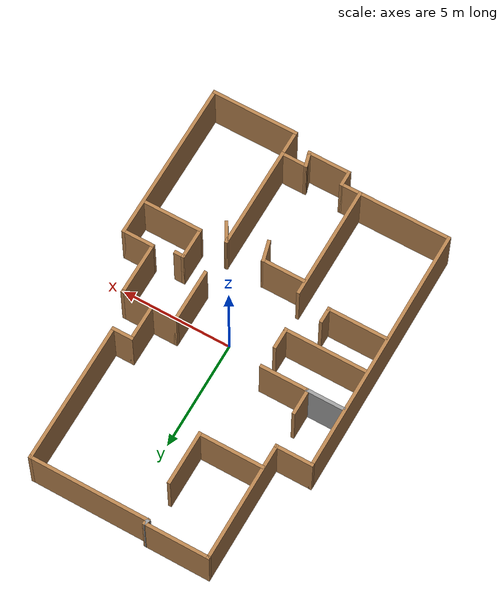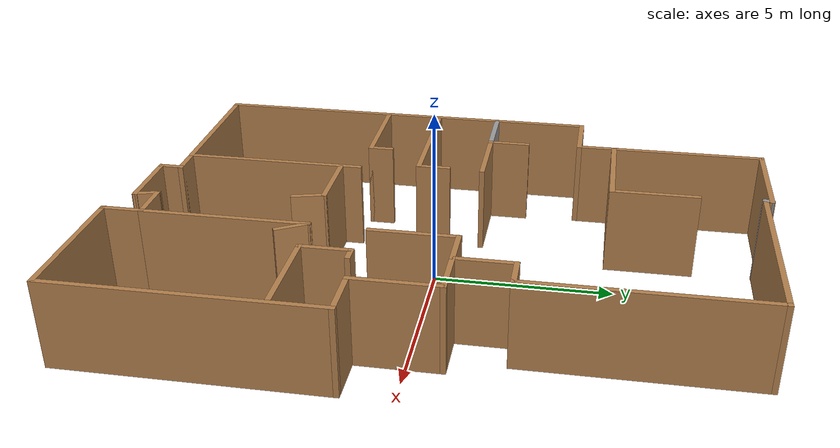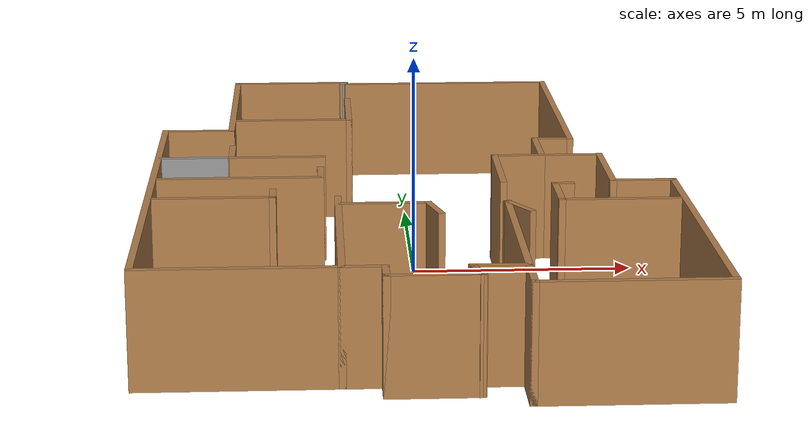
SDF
<?xml version='1.0'?>
<sdf version='1.6'>
  <model name='map_60'>
    <pose frame=''>-0.07251 0.171394 0 0 -0 0</pose>
    <link name='Wall_0'>
      <collision name='Wall_0_Collision'>
        <geometry>
          <box>
            <size>3 0.15 2.5</size>
          </box>
        </geometry>
        <pose frame=''>0 0 1.25 0 -0 0</pose>
      </collision>
      <visual name='Wall_0_Visual'>
        <pose frame=''>0 0 1.25 0 -0 0</pose>
        <geometry>
          <box>
            <size>3 0.15 2.5</size>
          </box>
        </geometry>
        <material>
          <script>
            <uri>file://media/materials/scripts/gazebo.material</uri>
            <name>Gazebo/Wood</name>
          </script>
          <ambient>1 1 1 1</ambient>
        </material>
        <meta>
          <layer>0</layer>
        </meta>
      </visual>
      <pose frame=''>-2.77235 8.90048 0 0 -0 3.14159</pose>
    </link>
    <link name='Wall_1'>
      <collision name='Wall_1_Collision'>
        <geometry>
          <box>
            <size>5.5 0.15 2.5</size>
          </box>
        </geometry>
        <pose frame=''>0 0 1.25 0 -0 0</pose>
      </collision>
      <visual name='Wall_1_Visual'>
        <pose frame=''>0 0 1.25 0 -0 0</pose>
        <geometry>
          <box>
            <size>5.5 0.15 2.5</size>
          </box>
        </geometry>
        <material>
          <script>
            <uri>file://media/materials/scripts/gazebo.material</uri>
            <name>Gazebo/Wood</name>
          </script>
          <ambient>1 1 1 1</ambient>
        </material>
        <meta>
          <layer>0</layer>
        </meta>
      </visual>
      <pose frame=''>-4.19735 6.22548 0 0 -0 -1.5708</pose>
    </link>
    <link name='Wall_10'>
      <collision name='Wall_10_Collision'>
        <geometry>
          <box>
            <size>5.25 0.15 2.5</size>
          </box>
        </geometry>
        <pose frame=''>0 0 1.25 0 -0 0</pose>
      </collision>
      <visual name='Wall_10_Visual'>
        <pose frame=''>0 0 1.25 0 -0 0</pose>
        <geometry>
          <box>
            <size>5.25 0.15 2.5</size>
          </box>
        </geometry>
        <material>
          <script>
            <uri>file://media/materials/scripts/gazebo.material</uri>
            <name>Gazebo/Wood</name>
          </script>
          <ambient>1 1 1 1</ambient>
        </material>
        <meta>
          <layer>0</layer>
        </meta>
      </visual>
      <pose frame=''>-1.69735 -5.24952 0 0 -0 1.5708</pose>
    </link>
    <link name='Wall_12'>
      <collision name='Wall_12_Collision'>
        <geometry>
          <box>
            <size>1 0.15 2.5</size>
          </box>
        </geometry>
        <pose frame=''>0 0 1.25 0 -0 0</pose>
      </collision>
      <visual name='Wall_12_Visual'>
        <pose frame=''>0 0 1.25 0 -0 0</pose>
        <geometry>
          <box>
            <size>1 0.15 2.5</size>
          </box>
        </geometry>
        <material>
          <script>
            <uri>file://media/materials/scripts/gazebo.material</uri>
            <name>Gazebo/Wood</name>
          </script>
          <ambient>1 1 1 1</ambient>
        </material>
        <meta>
          <layer>0</layer>
        </meta>
      </visual>
      <pose frame=''>-1.27235 -7.79952 0 0 -0 0</pose>
    </link>
    <link name='Wall_13'>
      <collision name='Wall_13_Collision'>
        <geometry>
          <box>
            <size>0.75 0.15 2.5</size>
          </box>
        </geometry>
        <pose frame=''>0 0 1.25 0 -0 0</pose>
      </collision>
      <visual name='Wall_13_Visual'>
        <pose frame=''>0 0 1.25 0 -0 0</pose>
        <geometry>
          <box>
            <size>0.75 0.15 2.5</size>
          </box>
        </geometry>
        <material>
          <script>
            <uri>file://media/materials/scripts/gazebo.material</uri>
            <name>Gazebo/Wood</name>
          </script>
          <ambient>1 1 1 1</ambient>
        </material>
        <meta>
          <layer>0</layer>
        </meta>
      </visual>
      <pose frame=''>-0.847354 -8.09952 0 0 -0 -1.5708</pose>
    </link>
    <link name='Wall_14'>
      <collision name='Wall_14_Collision'>
        <geometry>
          <box>
            <size>2 0.15 2.5</size>
          </box>
        </geometry>
        <pose frame=''>0 0 1.25 0 -0 0</pose>
      </collision>
      <visual name='Wall_14_Visual'>
        <pose frame=''>0 0 1.25 0 -0 0</pose>
        <geometry>
          <box>
            <size>2 0.15 2.5</size>
          </box>
        </geometry>
        <material>
          <script>
            <uri>file://media/materials/scripts/gazebo.material</uri>
            <name>Gazebo/Wood</name>
          </script>
          <ambient>1 1 1 1</ambient>
        </material>
        <meta>
          <layer>0</layer>
        </meta>
      </visual>
      <pose frame=''>0.077646 -8.39952 0 0 -0 0</pose>
    </link>
    <link name='Wall_15'>
      <collision name='Wall_15_Collision'>
        <geometry>
          <box>
            <size>0.75 0.15 2.5</size>
          </box>
        </geometry>
        <pose frame=''>0 0 1.25 0 -0 0</pose>
      </collision>
      <visual name='Wall_15_Visual'>
        <pose frame=''>0 0 1.25 0 -0 0</pose>
        <geometry>
          <box>
            <size>0.75 0.15 2.5</size>
          </box>
        </geometry>
        <material>
          <script>
            <uri>file://media/materials/scripts/gazebo.material</uri>
            <name>Gazebo/Wood</name>
          </script>
          <ambient>1 1 1 1</ambient>
        </material>
        <meta>
          <layer>0</layer>
        </meta>
      </visual>
      <pose frame=''>0.925 -8.10974 0 0 -0 1.8326</pose>
    </link>
    <link name='Wall_16'>
      <collision name='Wall_16_Collision'>
        <geometry>
          <box>
            <size>1.25 0.15 2.5</size>
          </box>
        </geometry>
        <pose frame=''>0 0 1.25 0 -0 0</pose>
      </collision>
      <visual name='Wall_16_Visual'>
        <pose frame=''>0 0 1.25 0 -0 0</pose>
        <geometry>
          <box>
            <size>1.25 0.15 2.5</size>
          </box>
        </geometry>
        <material>
          <script>
            <uri>file://media/materials/scripts/gazebo.material</uri>
            <name>Gazebo/Wood</name>
          </script>
          <ambient>1 1 1 1</ambient>
        </material>
        <meta>
          <layer>0</layer>
        </meta>
      </visual>
      <pose frame=''>1.39735 -7.81996 0 0 -0 0</pose>
    </link>
    <link name='Wall_17'>
      <collision name='Wall_17_Collision'>
        <geometry>
          <box>
            <size>1.25 0.15 2.5</size>
          </box>
        </geometry>
        <pose frame=''>0 0 1.25 0 -0 0</pose>
      </collision>
      <visual name='Wall_17_Visual'>
        <pose frame=''>0 0 1.25 0 -0 0</pose>
        <geometry>
          <box>
            <size>1.25 0.15 2.5</size>
          </box>
        </geometry>
        <material>
          <script>
            <uri>file://media/materials/scripts/gazebo.material</uri>
            <name>Gazebo/Wood</name>
          </script>
          <ambient>1 1 1 1</ambient>
        </material>
        <meta>
          <layer>0</layer>
        </meta>
      </visual>
      <pose frame=''>1.94735 -8.36996 0 0 -0 -1.5708</pose>
    </link>
    <link name='Wall_18'>
      <collision name='Wall_18_Collision'>
        <geometry>
          <box>
            <size>4 0.15 2.5</size>
          </box>
        </geometry>
        <pose frame=''>0 0 1.25 0 -0 0</pose>
      </collision>
      <visual name='Wall_18_Visual'>
        <pose frame=''>0 0 1.25 0 -0 0</pose>
        <geometry>
          <box>
            <size>4 0.15 2.5</size>
          </box>
        </geometry>
        <material>
          <script>
            <uri>file://media/materials/scripts/gazebo.material</uri>
            <name>Gazebo/Wood</name>
          </script>
          <ambient>1 1 1 1</ambient>
        </material>
        <meta>
          <layer>0</layer>
        </meta>
      </visual>
      <pose frame=''>3.87236 -8.91996 0 0 -0 0</pose>
    </link>
    <link name='Wall_19'>
      <collision name='Wall_19_Collision'>
        <geometry>
          <box>
            <size>7.5 0.15 2.5</size>
          </box>
        </geometry>
        <pose frame=''>0 0 1.25 0 -0 0</pose>
      </collision>
      <visual name='Wall_19_Visual'>
        <pose frame=''>0 0 1.25 0 -0 0</pose>
        <geometry>
          <box>
            <size>7.5 0.15 2.5</size>
          </box>
        </geometry>
        <material>
          <script>
            <uri>file://media/materials/scripts/gazebo.material</uri>
            <name>Gazebo/Wood</name>
          </script>
          <ambient>1 1 1 1</ambient>
        </material>
        <meta>
          <layer>0</layer>
        </meta>
      </visual>
      <pose frame=''>5.79735 -5.24496 0 0 -0 1.5708</pose>
    </link>
    <link name='Wall_2'>
      <collision name='Wall_2_Collision'>
        <geometry>
          <box>
            <size>1.75 0.15 2.5</size>
          </box>
        </geometry>
        <pose frame=''>0 0 1.25 0 -0 0</pose>
      </collision>
      <visual name='Wall_2_Visual'>
        <pose frame=''>0 0 1.25 0 -0 0</pose>
        <geometry>
          <box>
            <size>1.75 0.15 2.5</size>
          </box>
        </geometry>
        <material>
          <script>
            <uri>file://media/materials/scripts/gazebo.material</uri>
            <name>Gazebo/Wood</name>
          </script>
          <ambient>1 1 1 1</ambient>
        </material>
        <meta>
          <layer>0</layer>
        </meta>
      </visual>
      <pose frame=''>-4.99735 3.55048 0 0 -0 3.14159</pose>
    </link>
    <link name='Wall_20'>
      <collision name='Wall_20_Collision'>
        <geometry>
          <box>
            <size>1.5 0.15 2.5</size>
          </box>
        </geometry>
        <pose frame=''>0 0 1.25 0 -0 0</pose>
      </collision>
      <visual name='Wall_20_Visual'>
        <pose frame=''>0 0 1.25 0 -0 0</pose>
        <geometry>
          <box>
            <size>1.5 0.15 2.5</size>
          </box>
        </geometry>
        <material>
          <script>
            <uri>file://media/materials/scripts/gazebo.material</uri>
            <name>Gazebo/Wood</name>
          </script>
          <ambient>1 1 1 1</ambient>
        </material>
        <meta>
          <layer>0</layer>
        </meta>
      </visual>
      <pose frame=''>5.12235 -1.56996 0 0 -0 3.14159</pose>
    </link>
    <link name='Wall_21'>
      <collision name='Wall_21_Collision'>
        <geometry>
          <box>
            <size>2.5 0.15 2.5</size>
          </box>
        </geometry>
        <pose frame=''>0 0 1.25 0 -0 0</pose>
      </collision>
      <visual name='Wall_21_Visual'>
        <pose frame=''>0 0 1.25 0 -0 0</pose>
        <geometry>
          <box>
            <size>2.5 0.15 2.5</size>
          </box>
        </geometry>
        <material>
          <script>
            <uri>file://media/materials/scripts/gazebo.material</uri>
            <name>Gazebo/Wood</name>
          </script>
          <ambient>1 1 1 1</ambient>
        </material>
        <meta>
          <layer>0</layer>
        </meta>
      </visual>
      <pose frame=''>4.44735 -0.394963 0 0 -0 1.5708</pose>
    </link>
    <link name='Wall_22'>
      <collision name='Wall_22_Collision'>
        <geometry>
          <box>
            <size>1.5 0.15 2.5</size>
          </box>
        </geometry>
        <pose frame=''>0 0 1.25 0 -0 0</pose>
      </collision>
      <visual name='Wall_22_Visual'>
        <pose frame=''>0 0 1.25 0 -0 0</pose>
        <geometry>
          <box>
            <size>1.5 0.15 2.5</size>
          </box>
        </geometry>
        <material>
          <script>
            <uri>file://media/materials/scripts/gazebo.material</uri>
            <name>Gazebo/Wood</name>
          </script>
          <ambient>1 1 1 1</ambient>
        </material>
        <meta>
          <layer>0</layer>
        </meta>
      </visual>
      <pose frame=''>3.77236 0.780037 0 0 -0 3.14159</pose>
    </link>
    <link name='Wall_23'>
      <collision name='Wall_23_Collision'>
        <geometry>
          <box>
            <size>1.75 0.15 2.5</size>
          </box>
        </geometry>
        <pose frame=''>0 0 1.25 0 -0 0</pose>
      </collision>
      <visual name='Wall_23_Visual'>
        <pose frame=''>0 0 1.25 0 -0 0</pose>
        <geometry>
          <box>
            <size>1.75 0.15 2.5</size>
          </box>
        </geometry>
        <material>
          <script>
            <uri>file://media/materials/scripts/gazebo.material</uri>
            <name>Gazebo/Wood</name>
          </script>
          <ambient>1 1 1 1</ambient>
        </material>
        <meta>
          <layer>0</layer>
        </meta>
      </visual>
      <pose frame=''>3.09735 1.58004 0 0 -0 1.5708</pose>
    </link>
    <link name='Wall_24'>
      <collision name='Wall_24_Collision'>
        <geometry>
          <box>
            <size>1 0.15 2.5</size>
          </box>
        </geometry>
        <pose frame=''>0 0 1.25 0 -0 0</pose>
      </collision>
      <visual name='Wall_24_Visual'>
        <pose frame=''>0 0 1.25 0 -0 0</pose>
        <geometry>
          <box>
            <size>1 0.15 2.5</size>
          </box>
        </geometry>
        <material>
          <script>
            <uri>file://media/materials/scripts/gazebo.material</uri>
            <name>Gazebo/Wood</name>
          </script>
          <ambient>1 1 1 1</ambient>
        </material>
        <meta>
          <layer>0</layer>
        </meta>
      </visual>
      <pose frame=''>3.52236 2.38004 0 0 -0 0</pose>
    </link>
    <link name='Wall_25'>
      <collision name='Wall_25_Collision'>
        <geometry>
          <box>
            <size>6.5 0.15 2.5</size>
          </box>
        </geometry>
        <pose frame=''>0 0 1.25 0 -0 0</pose>
      </collision>
      <visual name='Wall_25_Visual'>
        <pose frame=''>0 0 1.25 0 -0 0</pose>
        <geometry>
          <box>
            <size>6.5 0.15 2.5</size>
          </box>
        </geometry>
        <material>
          <script>
            <uri>file://media/materials/scripts/gazebo.material</uri>
            <name>Gazebo/Wood</name>
          </script>
          <ambient>1 1 1 1</ambient>
        </material>
        <meta>
          <layer>0</layer>
        </meta>
      </visual>
      <pose frame=''>3.94735 5.55504 0 0 -0 1.5708</pose>
    </link>
    <link name='Wall_26'>
      <collision name='Wall_26_Collision'>
        <geometry>
          <box>
            <size>5.5 0.15 2.5</size>
          </box>
        </geometry>
        <pose frame=''>0 0 1.25 0 -0 0</pose>
      </collision>
      <visual name='Wall_26_Visual'>
        <pose frame=''>0 0 1.25 0 -0 0</pose>
        <geometry>
          <box>
            <size>5.5 0.15 2.5</size>
          </box>
        </geometry>
        <material>
          <script>
            <uri>file://media/materials/scripts/gazebo.material</uri>
            <name>Gazebo/Wood</name>
          </script>
          <ambient>1 1 1 1</ambient>
        </material>
        <meta>
          <layer>0</layer>
        </meta>
      </visual>
      <pose frame=''>1.27235 8.73004 0 0 -0 3.14159</pose>
    </link>
    <link name='Wall_28'>
      <collision name='Wall_28_Collision'>
        <geometry>
          <box>
            <size>0.329188 0.15 2.5</size>
          </box>
        </geometry>
        <pose frame=''>0 0 1.25 0 -0 0</pose>
      </collision>
      <visual name='Wall_28_Visual'>
        <pose frame=''>0 0 1.25 0 -0 0</pose>
        <geometry>
          <box>
            <size>0.329188 0.15 2.5</size>
          </box>
        </geometry>
        <material>
          <script>
            <uri>file://media/materials/scripts/gazebo.material</uri>
            <name>Gazebo/Grey</name>
          </script>
          <ambient>1 1 1 1</ambient>
        </material>
        <meta>
          <layer>0</layer>
        </meta>
      </visual>
      <pose frame=''>-1.375 8.81526 0 0 -0 1.25711</pose>
    </link>
    <link name='Wall_30'>
      <collision name='Wall_30_Collision'>
        <geometry>
          <box>
            <size>1.75 0.15 2.5</size>
          </box>
        </geometry>
        <pose frame=''>0 0 1.25 0 -0 0</pose>
      </collision>
      <visual name='Wall_30_Visual'>
        <pose frame=''>0 0 1.25 0 -0 0</pose>
        <geometry>
          <box>
            <size>1.75 0.15 2.5</size>
          </box>
        </geometry>
        <material>
          <script>
            <uri>file://media/materials/scripts/gazebo.material</uri>
            <name>Gazebo/Grey</name>
          </script>
          <ambient>1 1 1 1</ambient>
        </material>
        <meta>
          <layer>0</layer>
        </meta>
      </visual>
      <pose frame=''>-4.90979 0.867221 0 0 -0 0</pose>
    </link>
    <link name='Wall_31'>
      <collision name='Wall_31_Collision'>
        <geometry>
          <box>
            <size>1.25 0.15 2.5</size>
          </box>
        </geometry>
        <pose frame=''>0 0 1.25 0 -0 0</pose>
      </collision>
      <visual name='Wall_31_Visual'>
        <pose frame=''>0 0 1.25 0 -0 0</pose>
        <geometry>
          <box>
            <size>1.25 0.15 2.5</size>
          </box>
        </geometry>
        <material>
          <script>
            <uri>file://media/materials/scripts/gazebo.material</uri>
            <name>Gazebo/Wood</name>
          </script>
          <ambient>1 1 1 1</ambient>
        </material>
        <meta>
          <layer>0</layer>
        </meta>
      </visual>
      <pose frame=''>-4.10979 1.41722 0 0 -0 1.5708</pose>
    </link>
    <link name='Wall_33'>
      <collision name='Wall_33_Collision'>
        <geometry>
          <box>
            <size>2.75 0.15 2.5</size>
          </box>
        </geometry>
        <pose frame=''>0 0 1.25 0 -0 0</pose>
      </collision>
      <visual name='Wall_33_Visual'>
        <pose frame=''>0 0 1.25 0 -0 0</pose>
        <geometry>
          <box>
            <size>2.75 0.15 2.5</size>
          </box>
        </geometry>
        <material>
          <script>
            <uri>file://media/materials/scripts/gazebo.material</uri>
            <name>Gazebo/Wood</name>
          </script>
          <ambient>1 1 1 1</ambient>
        </material>
        <meta>
          <layer>0</layer>
        </meta>
      </visual>
      <pose frame=''>4.4283 -3.12281 0 0 -0 3.14159</pose>
    </link>
    <link name='Wall_34'>
      <collision name='Wall_34_Collision'>
        <geometry>
          <box>
            <size>1.5 0.15 2.5</size>
          </box>
        </geometry>
        <pose frame=''>0 0 1.25 0 -0 0</pose>
      </collision>
      <visual name='Wall_34_Visual'>
        <pose frame=''>0 0 1.25 0 -0 0</pose>
        <geometry>
          <box>
            <size>1.5 0.15 2.5</size>
          </box>
        </geometry>
        <material>
          <script>
            <uri>file://media/materials/scripts/gazebo.material</uri>
            <name>Gazebo/Wood</name>
          </script>
          <ambient>1 1 1 1</ambient>
        </material>
        <meta>
          <layer>0</layer>
        </meta>
      </visual>
      <pose frame=''>3.1283 -2.44781 0 0 -0 1.5708</pose>
    </link>
    <link name='Wall_38'>
      <collision name='Wall_38_Collision'>
        <geometry>
          <box>
            <size>4.75 0.15 2.5</size>
          </box>
        </geometry>
        <pose frame=''>0 0 1.25 0 -0 0</pose>
      </collision>
      <visual name='Wall_38_Visual'>
        <pose frame=''>0 0 1.25 0 -0 0</pose>
        <geometry>
          <box>
            <size>4.75 0.15 2.5</size>
          </box>
        </geometry>
        <material>
          <script>
            <uri>file://media/materials/scripts/gazebo.material</uri>
            <name>Gazebo/Wood</name>
          </script>
          <ambient>1 1 1 1</ambient>
        </material>
        <meta>
          <layer>0</layer>
        </meta>
      </visual>
      <pose frame=''>1.94735 -5.51996 0 0 -0 1.5708</pose>
    </link>
    <link name='Wall_40'>
      <collision name='Wall_40_Collision'>
        <geometry>
          <box>
            <size>2 0.15 2.5</size>
          </box>
        </geometry>
        <pose frame=''>0 0 1.25 0 -0 0</pose>
      </collision>
      <visual name='Wall_40_Visual'>
        <pose frame=''>0 0 1.25 0 -0 0</pose>
        <geometry>
          <box>
            <size>2 0.15 2.5</size>
          </box>
        </geometry>
        <material>
          <script>
            <uri>file://media/materials/scripts/gazebo.material</uri>
            <name>Gazebo/Wood</name>
          </script>
          <ambient>1 1 1 1</ambient>
        </material>
        <meta>
          <layer>0</layer>
        </meta>
      </visual>
      <pose frame=''>-0.688356 -3.22921 0 0 -0 0</pose>
    </link>
    <link name='Wall_41'>
      <collision name='Wall_41_Collision'>
        <geometry>
          <box>
            <size>1 0.15 2.5</size>
          </box>
        </geometry>
        <pose frame=''>0 0 1.25 0 -0 0</pose>
      </collision>
      <visual name='Wall_41_Visual'>
        <pose frame=''>0 0 1.25 0 -0 0</pose>
        <geometry>
          <box>
            <size>1 0.15 2.5</size>
          </box>
        </geometry>
        <material>
          <script>
            <uri>file://media/materials/scripts/gazebo.material</uri>
            <name>Gazebo/Wood</name>
          </script>
          <ambient>1 1 1 1</ambient>
        </material>
        <meta>
          <layer>0</layer>
        </meta>
      </visual>
      <pose frame=''>0.346642 -3.63973 0 0 -0 -1.309</pose>
    </link>
    <link name='Wall_43'>
      <collision name='Wall_43_Collision'>
        <geometry>
          <box>
            <size>1 0.15 2.5</size>
          </box>
        </geometry>
        <pose frame=''>0 0 1.25 0 -0 0</pose>
      </collision>
      <visual name='Wall_43_Visual'>
        <pose frame=''>0 0 1.25 0 -0 0</pose>
        <geometry>
          <box>
            <size>1 0.15 2.5</size>
          </box>
        </geometry>
        <material>
          <script>
            <uri>file://media/materials/scripts/gazebo.material</uri>
            <name>Gazebo/Wood</name>
          </script>
          <ambient>1 1 1 1</ambient>
        </material>
        <meta>
          <layer>0</layer>
        </meta>
      </visual>
      <pose frame=''>2.15985 -3.58802 0 0 -0 -1.0472</pose>
    </link>
    <link name='Wall_52'>
      <collision name='Wall_52_Collision'>
        <geometry>
          <box>
            <size>2.75 0.15 2.5</size>
          </box>
        </geometry>
        <pose frame=''>0 0 1.25 0 -0 0</pose>
      </collision>
      <visual name='Wall_52_Visual'>
        <pose frame=''>0 0 1.25 0 -0 0</pose>
        <geometry>
          <box>
            <size>2.75 0.15 2.5</size>
          </box>
        </geometry>
        <material>
          <script>
            <uri>file://media/materials/scripts/gazebo.material</uri>
            <name>Gazebo/Wood</name>
          </script>
          <ambient>1 1 1 1</ambient>
        </material>
        <meta>
          <layer>0</layer>
        </meta>
      </visual>
      <pose frame=''>-4.40979 -2.644 0 0 -0 0</pose>
    </link>
    <link name='Wall_53'>
      <collision name='Wall_53_Collision'>
        <geometry>
          <box>
            <size>0.75 0.15 2.5</size>
          </box>
        </geometry>
        <pose frame=''>0 0 1.25 0 -0 0</pose>
      </collision>
      <visual name='Wall_53_Visual'>
        <pose frame=''>0 0 1.25 0 -0 0</pose>
        <geometry>
          <box>
            <size>0.75 0.15 2.5</size>
          </box>
        </geometry>
        <material>
          <script>
            <uri>file://media/materials/scripts/gazebo.material</uri>
            <name>Gazebo/Wood</name>
          </script>
          <ambient>1 1 1 1</ambient>
        </material>
        <meta>
          <layer>0</layer>
        </meta>
      </visual>
      <pose frame=''>-3.10979 -2.34401 0 0 -0 1.5708</pose>
    </link>
    <link name='Wall_55'>
      <collision name='Wall_55_Collision'>
        <geometry>
          <box>
            <size>3 0.15 2.5</size>
          </box>
        </geometry>
        <pose frame=''>0 0 1.25 0 -0 0</pose>
      </collision>
      <visual name='Wall_55_Visual'>
        <pose frame=''>0 0 1.25 0 -0 0</pose>
        <geometry>
          <box>
            <size>3 0.15 2.5</size>
          </box>
        </geometry>
        <material>
          <script>
            <uri>file://media/materials/scripts/gazebo.material</uri>
            <name>Gazebo/Wood</name>
          </script>
          <ambient>1 1 1 1</ambient>
        </material>
        <meta>
          <layer>0</layer>
        </meta>
      </visual>
      <pose frame=''>-2.74198 4.59125 0 0 -0 0</pose>
    </link>
    <link name='Wall_56'>
      <collision name='Wall_56_Collision'>
        <geometry>
          <box>
            <size>2.5 0.15 2.5</size>
          </box>
        </geometry>
        <pose frame=''>0 0 1.25 0 -0 0</pose>
      </collision>
      <visual name='Wall_56_Visual'>
        <pose frame=''>0 0 1.25 0 -0 0</pose>
        <geometry>
          <box>
            <size>2.5 0.15 2.5</size>
          </box>
        </geometry>
        <material>
          <script>
            <uri>file://media/materials/scripts/gazebo.material</uri>
            <name>Gazebo/Wood</name>
          </script>
          <ambient>1 1 1 1</ambient>
        </material>
        <meta>
          <layer>0</layer>
        </meta>
      </visual>
      <pose frame=''>-1.31698 5.76625 0 0 -0 1.5708</pose>
    </link>
    <link name='Wall_58'>
      <collision name='Wall_58_Collision'>
        <geometry>
          <box>
            <size>1.25 0.15 2.5</size>
          </box>
        </geometry>
        <pose frame=''>0 0 1.25 0 -0 0</pose>
      </collision>
      <visual name='Wall_58_Visual'>
        <pose frame=''>0 0 1.25 0 -0 0</pose>
        <geometry>
          <box>
            <size>1.25 0.15 2.5</size>
          </box>
        </geometry>
        <material>
          <script>
            <uri>file://media/materials/scripts/gazebo.material</uri>
            <name>Gazebo/Wood</name>
          </script>
          <ambient>1 1 1 1</ambient>
        </material>
        <meta>
          <layer>0</layer>
        </meta>
      </visual>
      <pose frame=''>2.54735 0.780037 0 0 -0 3.14159</pose>
    </link>
    <link name='Wall_59'>
      <collision name='Wall_59_Collision'>
        <geometry>
          <box>
            <size>2.5 0.15 2.5</size>
          </box>
        </geometry>
        <pose frame=''>0 0 1.25 0 -0 0</pose>
      </collision>
      <visual name='Wall_59_Visual'>
        <pose frame=''>0 0 1.25 0 -0 0</pose>
        <geometry>
          <box>
            <size>2.5 0.15 2.5</size>
          </box>
        </geometry>
        <material>
          <script>
            <uri>file://media/materials/scripts/gazebo.material</uri>
            <name>Gazebo/Wood</name>
          </script>
          <ambient>1 1 1 1</ambient>
        </material>
        <meta>
          <layer>0</layer>
        </meta>
      </visual>
      <pose frame=''>1.99735 -0.394963 0 0 -0 -1.5708</pose>
    </link>
    <link name='Wall_61'>
      <collision name='Wall_61_Collision'>
        <geometry>
          <box>
            <size>0.5 0.15 2.5</size>
          </box>
        </geometry>
        <pose frame=''>0 0 1.25 0 -0 0</pose>
      </collision>
      <visual name='Wall_61_Visual'>
        <pose frame=''>0 0 1.25 0 -0 0</pose>
        <geometry>
          <box>
            <size>0.5 0.15 2.5</size>
          </box>
        </geometry>
        <material>
          <script>
            <uri>file://media/materials/scripts/gazebo.material</uri>
            <name>Gazebo/Wood</name>
          </script>
          <ambient>1 1 1 1</ambient>
        </material>
        <meta>
          <layer>0</layer>
        </meta>
      </visual>
      <pose frame=''>3.3033 -1.77281 0 0 -0 0</pose>
    </link>
    <link name='Wall_63'>
      <collision name='Wall_63_Collision'>
        <geometry>
          <box>
            <size>2.25 0.15 2.5</size>
          </box>
        </geometry>
        <pose frame=''>0 0 1.25 0 -0 0</pose>
      </collision>
      <visual name='Wall_63_Visual'>
        <pose frame=''>0 0 1.25 0 -0 0</pose>
        <geometry>
          <box>
            <size>2.25 0.15 2.5</size>
          </box>
        </geometry>
        <material>
          <script>
            <uri>file://media/materials/scripts/gazebo.material</uri>
            <name>Gazebo/Wood</name>
          </script>
          <ambient>1 1 1 1</ambient>
        </material>
        <meta>
          <layer>0</layer>
        </meta>
      </visual>
      <pose frame=''>-3.05979 0.867221 0 0 -0 0</pose>
    </link>
    <link name='Wall_68'>
      <collision name='Wall_68_Collision'>
        <geometry>
          <box>
            <size>3.75 0.15 2.5</size>
          </box>
        </geometry>
        <pose frame=''>0 0 1.25 0 -0 0</pose>
      </collision>
      <visual name='Wall_68_Visual'>
        <pose frame=''>0 0 1.25 0 -0 0</pose>
        <geometry>
          <box>
            <size>3.75 0.15 2.5</size>
          </box>
        </geometry>
        <material>
          <script>
            <uri>file://media/materials/scripts/gazebo.material</uri>
            <name>Gazebo/Wood</name>
          </script>
          <ambient>1 1 1 1</ambient>
        </material>
        <meta>
          <layer>0</layer>
        </meta>
      </visual>
      <pose frame=''>-3.85659 -0.994793 0 0 -0 0</pose>
    </link>
    <link name='Wall_70'>
      <collision name='Wall_70_Collision'>
        <geometry>
          <box>
            <size>1 0.15 2.5</size>
          </box>
        </geometry>
        <pose frame=''>0 0 1.25 0 -0 0</pose>
      </collision>
      <visual name='Wall_70_Visual'>
        <pose frame=''>0 0 1.25 0 -0 0</pose>
        <geometry>
          <box>
            <size>1 0.15 2.5</size>
          </box>
        </geometry>
        <material>
          <script>
            <uri>file://media/materials/scripts/gazebo.material</uri>
            <name>Gazebo/Wood</name>
          </script>
          <ambient>1 1 1 1</ambient>
        </material>
        <meta>
          <layer>0</layer>
        </meta>
      </visual>
      <pose frame=''>-2.05659 -0.569793 0 0 -0 1.5708</pose>
    </link>
    <link name='Wall_8'>
      <collision name='Wall_8_Collision'>
        <geometry>
          <box>
            <size>11.5 0.15 2.5</size>
          </box>
        </geometry>
        <pose frame=''>0 0 1.25 0 -0 0</pose>
      </collision>
      <visual name='Wall_8_Visual'>
        <pose frame=''>0 0 1.25 0 -0 0</pose>
        <geometry>
          <box>
            <size>11.5 0.15 2.5</size>
          </box>
        </geometry>
        <material>
          <script>
            <uri>file://media/materials/scripts/gazebo.material</uri>
            <name>Gazebo/Wood</name>
          </script>
          <ambient>1 1 1 1</ambient>
        </material>
        <meta>
          <layer>0</layer>
        </meta>
      </visual>
      <pose frame=''>-5.79735 -2.12452 0 0 -0 -1.5708</pose>
    </link>
    <link name='Wall_9'>
      <collision name='Wall_9_Collision'>
        <geometry>
          <box>
            <size>4.25 0.15 2.5</size>
          </box>
        </geometry>
        <pose frame=''>0 0 1.25 0 -0 0</pose>
      </collision>
      <visual name='Wall_9_Visual'>
        <pose frame=''>0 0 1.25 0 -0 0</pose>
        <geometry>
          <box>
            <size>4.25 0.15 2.5</size>
          </box>
        </geometry>
        <material>
          <script>
            <uri>file://media/materials/scripts/gazebo.material</uri>
            <name>Gazebo/Wood</name>
          </script>
          <ambient>1 1 1 1</ambient>
        </material>
        <meta>
          <layer>0</layer>
        </meta>
      </visual>
      <pose frame=''>-3.74735 -7.79952 0 0 -0 0</pose>
    </link>
    <static>1</static>
  </model>
</sdf>
